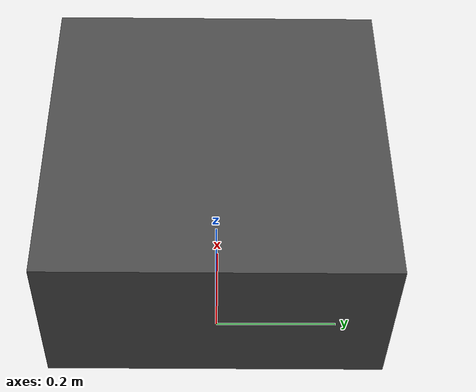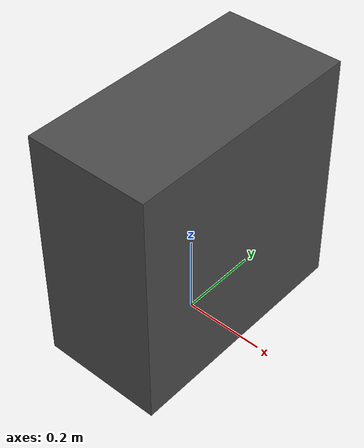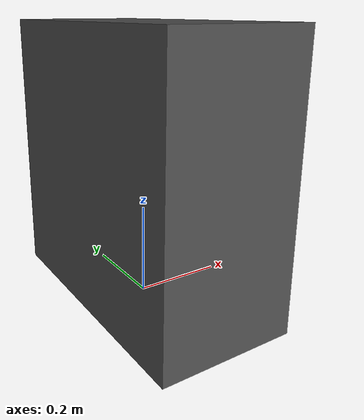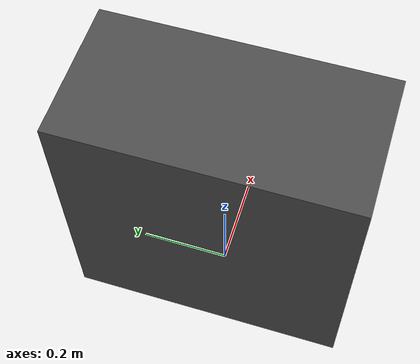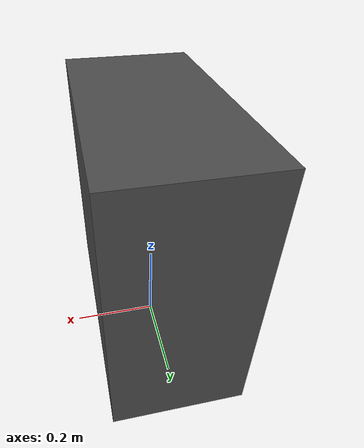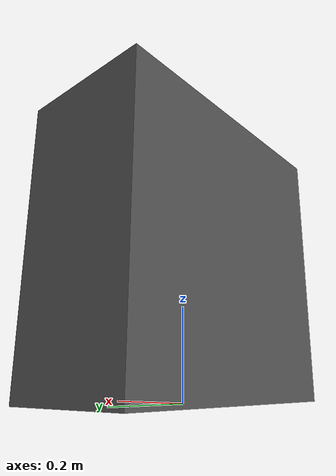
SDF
<?xml version="1.0" ?>
<sdf version="1.4">
  <model name="hackathon_obstacle">
    <static>true</static>
    <link name="body">
      <pose>0 0 0.3 0 0 0</pose>
      <gravity>true</gravity>
      <visual name="bottom">
        <geometry>
	  <box>
	    <size>0.3 0.6 0.6</size>
          </box>
        </geometry>
        <material>
	  <script>
	    <uri>file://media/materials/scripts/gazebo.material</uri>
	    <name>Gazebo/Road</name>
	  </script>
        </material>
      </visual>
      <collision name="bottom-c">
        <geometry>
	  <box>
	    <size>0.3 0.6 0.6</size>
          </box>
        </geometry>
      </collision>
    </link>
  </model>
</sdf>
